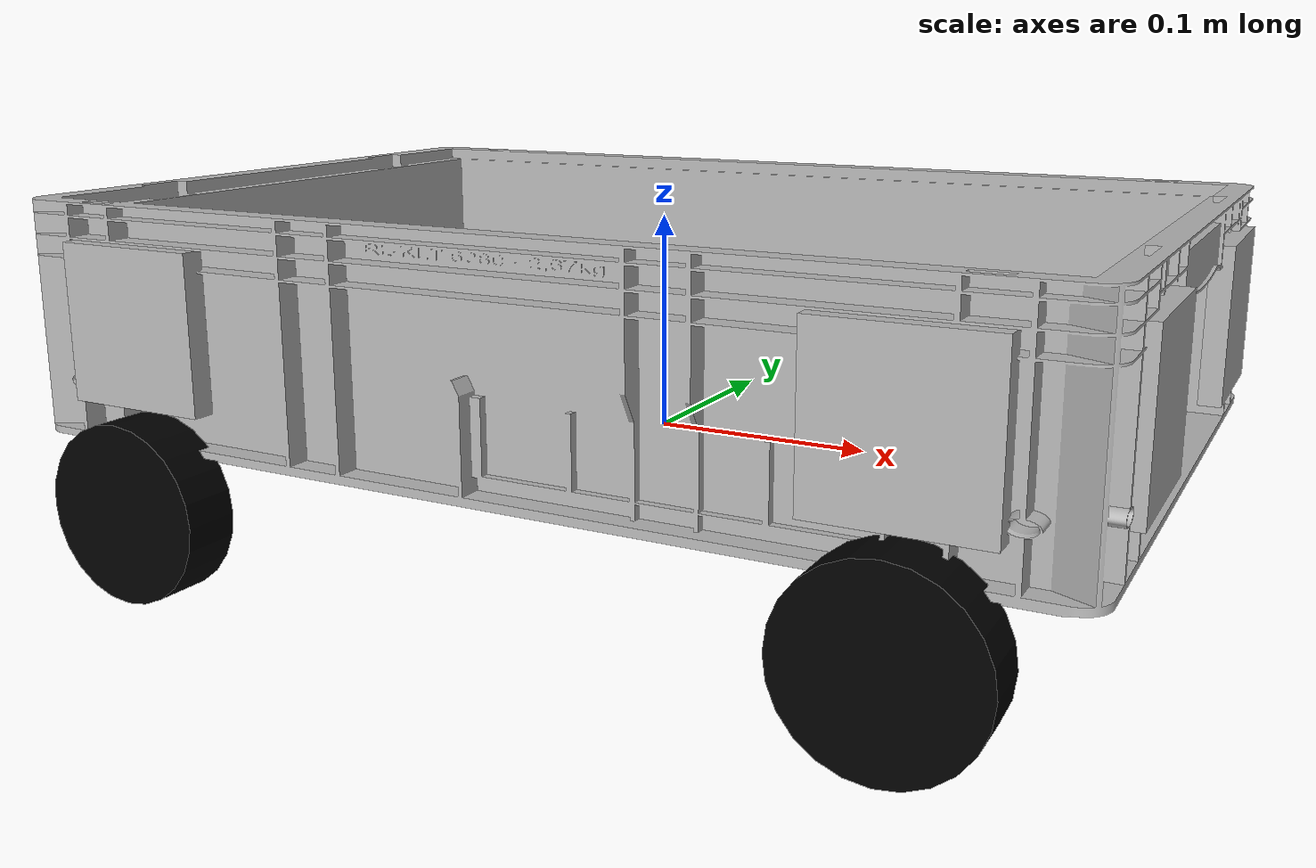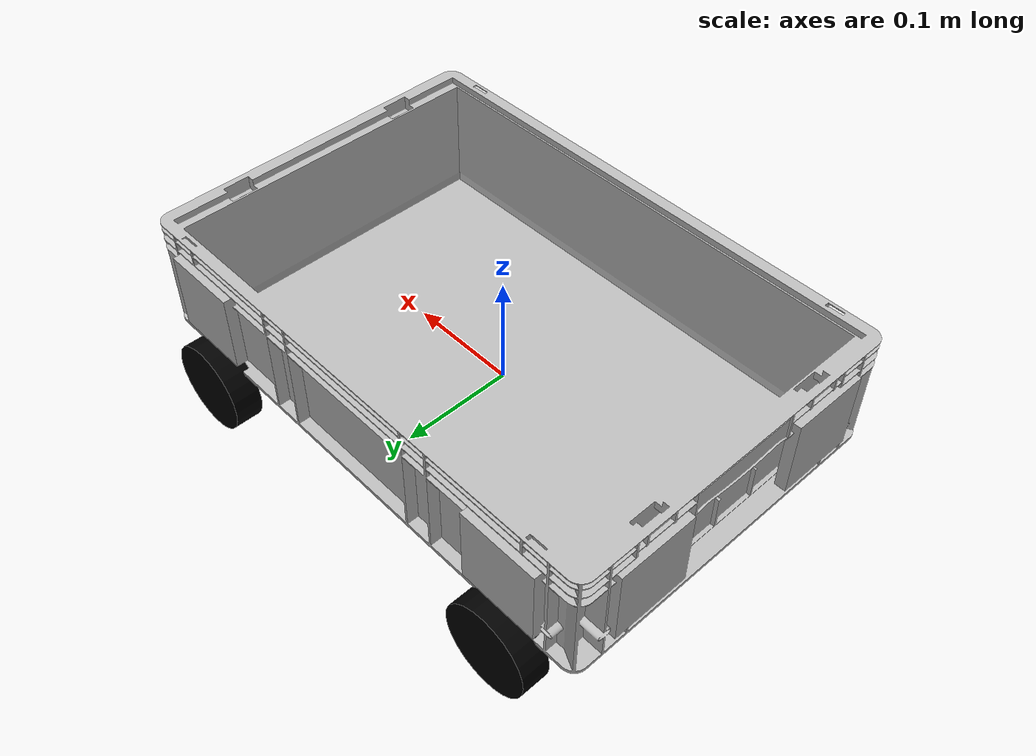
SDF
<?xml version="1.0" ?>
<sdf version="1.7">
  <model name="klt_model">
    <static>0</static>
    <link name="klt_link">
      <collision name="collision">
        <geometry>
          <mesh>
            <uri>model://klt_model/meshes/RL-KLT_6280.stl</uri>
            <scale>0.0008 0.0008 0.0004</scale>
          </mesh>
        </geometry>
      </collision>
      <visual name="visual">
        <geometry>
          <mesh>
            <uri>model://klt_model/meshes/RL-KLT_6280.stl</uri>
            <scale>0.0008 0.0008 0.0004</scale>
          </mesh>
        </geometry>
      </visual>
    </link>
    <link name="wheel1">
      <pose>0.17 0.165 -0.019 1.5707 0 0</pose>
      <collision name="collision">
        <geometry>
          <cylinder>
            <radius>0.08</radius>
            <length>0.04</length>
	        </cylinder>
        </geometry>
      </collision>
      <visual name="visual">
        <geometry>
          <cylinder>
            <radius>0.04</radius>
            <length>0.025</length>
          </cylinder>
        </geometry>
        <material>
	        <ambient>0 0 0 1</ambient>
          <diffuse>0 0 0 1</diffuse>
          <specular>0 0 0 1</specular>
          <emissive>0 0 0 1</emissive>
        </material>
      </visual>
    </link>
    <joint name="klt_wheel_1" type="fixed">
      <pose>0.17 0.165 -0.019 1.5707 0 0</pose>
      <parent>klt_link</parent>
      <child>wheel1</child>
      <axis>
        <xyz>0 0 1</xyz>
      </axis>
    </joint>
    <link name="wheel2">
      <pose>0.17 -0.165 -0.019 1.5707 0 0</pose>
      <collision name="collision">
        <geometry>
          <cylinder>
            <radius>0.08</radius>
            <length>0.04</length>
	        </cylinder>
        </geometry>
      </collision>
      <visual name="visual">
        <geometry>
          <cylinder>
            <radius>0.04</radius>
            <length>0.025</length>
          </cylinder>
        </geometry>
        <material>
	         <ambient>0 0 0 1</ambient>
          <diffuse>0 0 0 1</diffuse>
          <specular>0 0 0 1</specular>
          <emissive>0 0 0 1</emissive>
        </material>
      </visual>
    </link>
    <joint name="klt_wheel_2" type="fixed">
      <pose>0.17 -0.165 -0.019 1.5707 0 0</pose>
      <parent>klt_link</parent>
      <child>wheel2</child>
      <axis>
        <xyz>0 0 1</xyz>
      </axis>
    </joint>
    <link name="wheel3">
      <pose>-0.17 0.165 -0.019 1.5707 0 0</pose>
      <collision name="collision">
        <geometry>
          <cylinder>
            <radius>0.08</radius>
            <length>0.04</length>
	        </cylinder>
        </geometry>
      </collision>
      <visual name="visual">
        <geometry>
          <cylinder>
            <radius>0.04</radius>
            <length>0.025</length>
          </cylinder>
        </geometry>
        <material>
	        <ambient>0 0 0 1</ambient>
          <diffuse>0 0 0 1</diffuse>
          <specular>0 0 0 1</specular>
          <emissive>0 0 0 1</emissive>
        </material>
      </visual>
    </link>
    <joint name="klt_wheel_3" type="fixed">
      <pose>-0.17 0.165 -0.019 1.5707 0 0</pose>
      <parent>klt_link</parent>
      <child>wheel3</child>
      <axis>
        <xyz>0 0 1</xyz>
      </axis>
    </joint>
    <link name="wheel4">
      <pose>-0.17 -0.165 -0.019 1.5707 0 0</pose>
      <collision name="collision">
        <geometry>
          <cylinder>
            <radius>0.08</radius>
            <length>0.04</length>
	        </cylinder>
        </geometry>
      </collision>
      <visual name="visual">
        <geometry>
          <cylinder>
            <radius>0.04</radius>
            <length>0.025</length>
          </cylinder>
        </geometry>
        <material>
	        <ambient>0 0 0 1</ambient>
          <diffuse>0 0 0 1</diffuse>
          <specular>0 0 0 1</specular>
          <emissive>0 0 0 1</emissive>
        </material>
      </visual>
    </link>
    <joint name="klt_wheel_4" type="fixed">
      <pose>-0.17 -0.165 -0.019 1.5707 0 0</pose>
      <parent>klt_link</parent>
      <child>wheel4</child>
      <axis>
        <xyz>0 0 1</xyz>
      </axis>
    </joint>

    <link name="april_1">
      <pose>-0.17 -0.16 0.06 1.5707 0 0</pose>
      <collision name="collision">
        <geometry>
          <box>
            <size>0.0 0.0 0.0</size>
          </box>
        </geometry>
      </collision>
      <visual name="visual">
        <cast_shadows>false</cast_shadows>
        <geometry>
          <box>
            <size>0.07 0.07 0.01</size>
          </box>
        </geometry>
        <material>
          <script>
            <uri>model://klt_model/materials/scripts</uri>
            <uri>model://klt_model/materials/textures</uri>
            <name>april_tag</name>
          </script>
        </material>
      </visual>
    </link>

    <joint name="april_1_jnt" type="fixed">
      <pose>-0.17 -0.16 0.06 1.5707 0 0</pose>
      <parent>klt_link</parent>
      <child>april_1</child>
      <axis>
        <xyz>0 0 1</xyz>
      </axis>
    </joint>

    <link name="april_2">
      <pose>-0.17 0.16 0.06 1.5707 0 0</pose>
      <collision name="collision">
        <geometry>
          <box>
            <size>0.0 0.0 0.0</size>
          </box>
        </geometry>
      </collision>
      <visual name="visual">
        <cast_shadows>false</cast_shadows>
        <geometry>
          <box>
            <size>0.07 0.07 0.01</size>
          </box>
        </geometry>
        <material>
          <script>
            <uri>model://klt_model/materials/scripts</uri>
            <uri>model://klt_model/materials/textures</uri>
            <name>april_tag</name>
          </script>
        </material>
      </visual>
    </link>

    <joint name="april_2_jnt" type="fixed">
      <pose>-0.17 0.16 0.06 1.5707 0 0</pose>
      <parent>klt_link</parent>
      <child>april_2</child>
      <axis>
        <xyz>0 0 1</xyz>
      </axis>
    </joint>

    <link name="april_3">
      <pose>0.17 0.16 0.06 1.5707 0 0</pose>
      <collision name="collision">
        <geometry>
          <box>
            <size>0.0 0.0 0.0</size>
          </box>
        </geometry>
      </collision>
      <visual name="visual">
        <cast_shadows>false</cast_shadows>
        <geometry>
          <box>
            <size>0.07 0.07 0.01</size>
          </box>
        </geometry>
        <material>
          <script>
            <uri>model://klt_model/materials/scripts</uri>
            <uri>model://klt_model/materials/textures</uri>
            <name>april_tag</name>
          </script>
        </material>
      </visual>
    </link>

    <joint name="april_3_jnt" type="fixed">
      <pose>0.17 0.16 0.06 1.5707 0 0</pose>
      <parent>klt_link</parent>
      <child>april_3</child>
      <axis>
        <xyz>0 0 1</xyz>
      </axis>
    </joint>

    <link name="april_4">
      <pose>0.17 -0.16 0.06 1.5707 0 0</pose>
      <collision name="collision">
        <geometry>
          <box>
            <size>0.0 0.0 0.0</size>
          </box>
        </geometry>
      </collision>
      <visual name="visual">
        <cast_shadows>false</cast_shadows>
        <geometry>
          <box>
            <size>0.07 0.07 0.01</size>
          </box>
        </geometry>
        <material>
          <script>
            <uri>model://klt_model/materials/scripts</uri>
            <uri>model://klt_model/materials/textures</uri>
            <name>april_tag</name>
          </script>
        </material>
      </visual>
    </link>

    <joint name="april_4_jnt" type="fixed">
      <pose>0.17 -0.16 0.06 1.5707 0 0</pose>
      <parent>klt_link</parent>
      <child>april_4</child>
      <axis>
        <xyz>0 0 1</xyz>
      </axis>
    </joint>

    <link name="april_5">
      <pose>0.237 -0.09 0.06 1.5707 0 1.5707</pose>
      <collision name="collision">
        <geometry>
          <box>
            <size>0.0 0.0 0.0</size>
          </box>
        </geometry>
      </collision>
      <visual name="visual">
        <cast_shadows>false</cast_shadows>
        <geometry>
          <box>
            <size>0.07 0.07 0.01</size>
          </box>
        </geometry>
        <material>
          <script>
            <uri>model://klt_model/materials/scripts</uri>
            <uri>model://klt_model/materials/textures</uri>
            <name>april_tag</name>
          </script>
        </material>
      </visual>
    </link>

    <joint name="april_5_jnt" type="fixed">
      <pose>0.237 -0.09 0.06 1.5707 0 1.5707 </pose>
      <parent>klt_link</parent>
      <child>april_5</child>
      <axis>
        <xyz>0 0 1</xyz>
      </axis>
    </joint>

    <link name="april_6">
      <pose>-0.237 -0.09 0.06 1.5707 0 1.5707</pose>
      <collision name="collision">
        <geometry>
          <box>
            <size>0.0 0.0 0.0</size>
          </box>
        </geometry>
      </collision>
      <visual name="visual">
        <cast_shadows>false</cast_shadows>
        <geometry>
          <box>
            <size>0.07 0.07 0.01</size>
          </box>
        </geometry>
        <material>
          <script>
            <uri>model://klt_model/materials/scripts</uri>
            <uri>model://klt_model/materials/textures</uri>
            <name>april_tag</name>
          </script>
        </material>
      </visual>
    </link>

    <joint name="april_6_jnt" type="fixed">
      <pose>-0.237 -0.09 0.06 1.5707 0 1.5707 </pose>
      <parent>klt_link</parent>
      <child>april_6</child>
      <axis>
        <xyz>0 0 1</xyz>
      </axis>
    </joint>

    <link name="april_7">
      <pose>0.237 0.09 0.06 1.5707 0 1.5707</pose>
      <collision name="collision">
        <geometry>
          <box>
            <size>0.0 0.0 0.0</size>
          </box>
        </geometry>
      </collision>
      <visual name="visual">
        <cast_shadows>false</cast_shadows>
        <geometry>
          <box>
            <size>0.07 0.07 0.01</size>
          </box>
        </geometry>
        <material>
          <script>
            <uri>model://klt_model/materials/scripts</uri>
            <uri>model://klt_model/materials/textures</uri>
            <name>april_tag</name>
          </script>
        </material>
      </visual>
    </link>

    <joint name="april_7_jnt" type="fixed">
      <pose>0.237 0.09 0.06 1.5707 0 1.5707 </pose>
      <parent>klt_link</parent>
      <child>april_7</child>
      <axis>
        <xyz>0 0 1</xyz>
      </axis>
    </joint>

    <link name="april_8">
      <pose>-0.237 0.09 0.06 1.5707 0 1.5707</pose>
      <collision name="collision">
        <geometry>
          <box>
            <size>0.0 0.0 0.0</size>
          </box>
        </geometry>
      </collision>
      <visual name="visual">
        <cast_shadows>false</cast_shadows>
        <geometry>
          <box>
            <size>0.07 0.07 0.01</size>
          </box>
        </geometry>
        <material>
          <script>
            <uri>model://klt_model/materials/scripts</uri>
            <uri>model://klt_model/materials/textures</uri>
            <name>april_tag</name>
          </script>
        </material>
      </visual>
    </link>

    <joint name="april_8_jnt" type="fixed">
      <pose>-0.237 0.09 0.06 1.5707 0 1.5707 </pose>
      <parent>klt_link</parent>
      <child>april_8</child>
      <axis>
        <xyz>0 0 1</xyz>
      </axis>
    </joint>
  </model>
</sdf>
